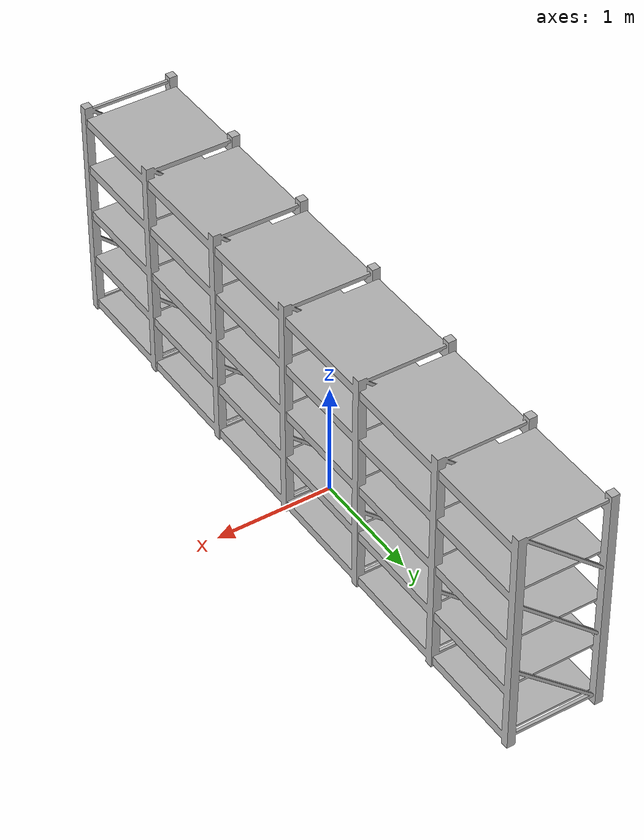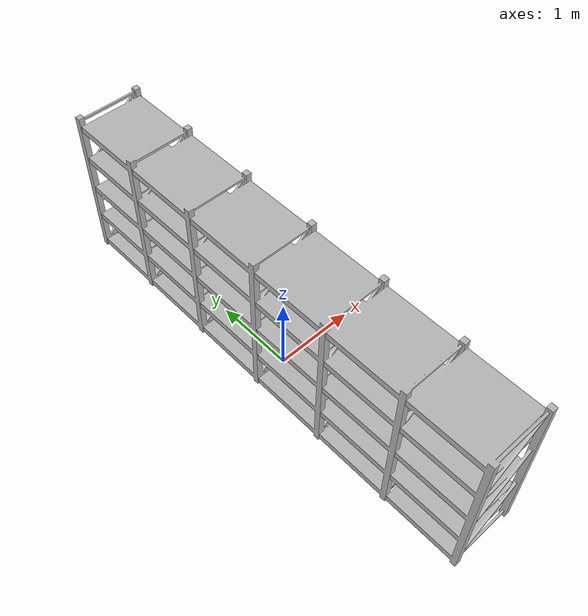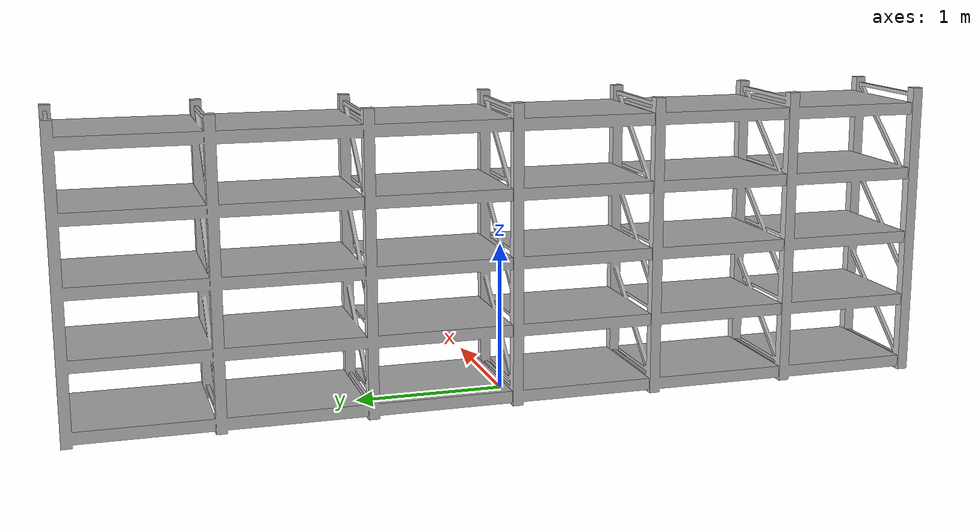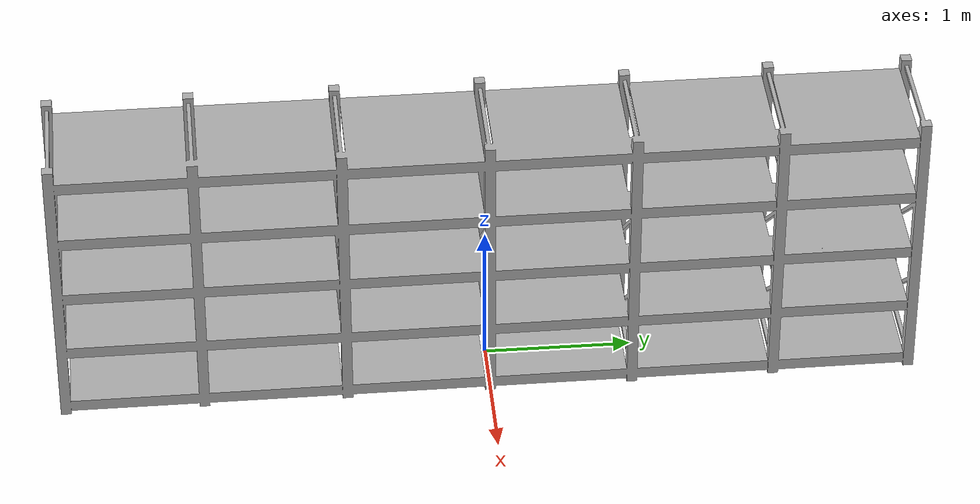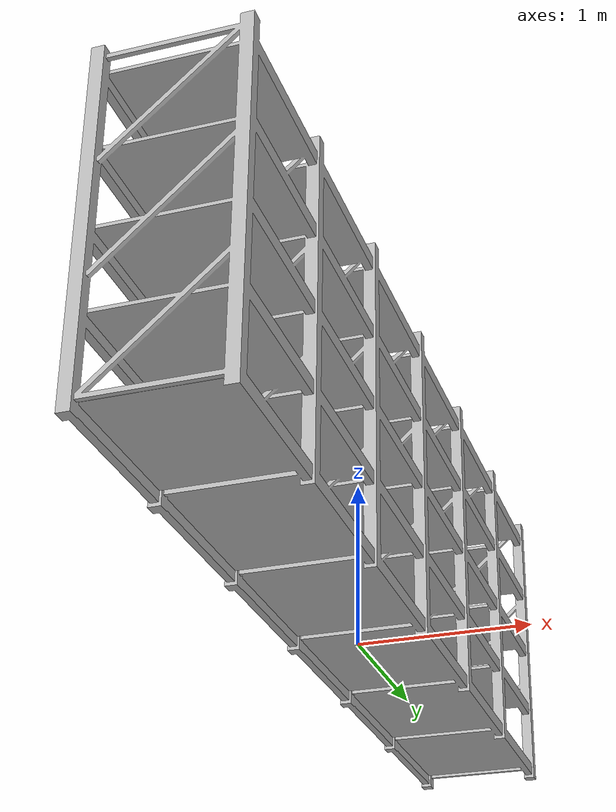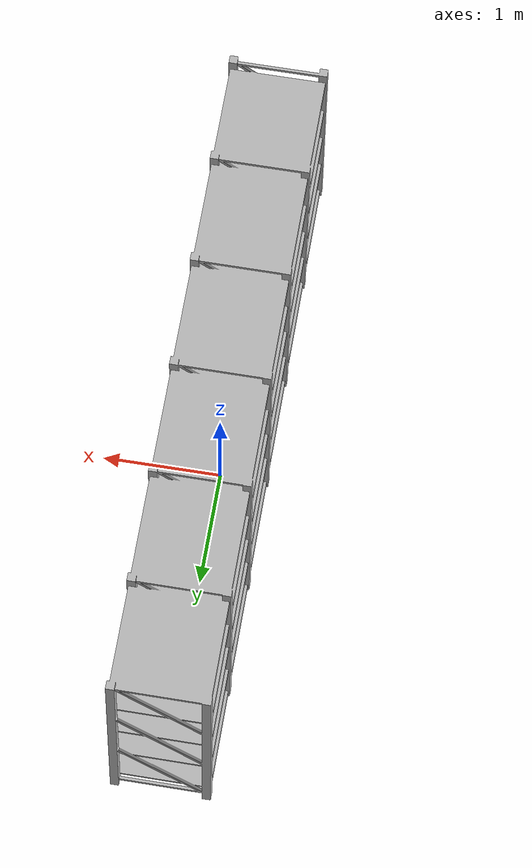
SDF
<?xml version="1.0"?>
<sdf version="1.6">
  <model name="warehouse_rack_5lvl_6bay">
    <static>true</static>
    <link name="link">
      <collision name="shelf_0">
        <pose>0 0 0.09 0 0 0</pose>
        <geometry><box><size>0.83 5.8 0.02</size></box></geometry>
      </collision>
      <collision name="shelf_1">
        <pose>0 0 0.54 0 0 0</pose>
        <geometry><box><size>0.83 5.8 0.02</size></box></geometry>
      </collision>
      <collision name="shelf_2">
        <pose>0 0 0.99 0 0 0</pose>
        <geometry><box><size>0.83 5.8 0.02</size></box></geometry>
      </collision>
      <collision name="shelf_3">
        <pose>0 0 1.44 0 0 0</pose>
        <geometry><box><size>0.83 5.8 0.02</size></box></geometry>
      </collision>
      <collision name="shelf_4">
        <pose>0 0 1.89 0 0 0</pose>
        <geometry><box><size>0.83 5.8 0.02</size></box></geometry>
      </collision>
      <collision name="post_0_0">
        <pose>-0.38 -2.865 1 0 0 0</pose>
        <geometry><box><size>0.07 0.07 2</size></box></geometry>
      </collision>
      <collision name="post_0_1">
        <pose>0.38 -2.865 1 0 0 0</pose>
        <geometry><box><size>0.07 0.07 2</size></box></geometry>
      </collision>
      <collision name="post_1_0">
        <pose>-0.38 -1.9333 1 0 0 0</pose>
        <geometry><box><size>0.07 0.07 2</size></box></geometry>
      </collision>
      <collision name="post_1_1">
        <pose>0.38 -1.9333 1 0 0 0</pose>
        <geometry><box><size>0.07 0.07 2</size></box></geometry>
      </collision>
      <collision name="post_2_0">
        <pose>-0.38 -0.96667 1 0 0 0</pose>
        <geometry><box><size>0.07 0.07 2</size></box></geometry>
      </collision>
      <collision name="post_2_1">
        <pose>0.38 -0.96667 1 0 0 0</pose>
        <geometry><box><size>0.07 0.07 2</size></box></geometry>
      </collision>
      <collision name="post_3_0">
        <pose>-0.38 0 1 0 0 0</pose>
        <geometry><box><size>0.07 0.07 2</size></box></geometry>
      </collision>
      <collision name="post_3_1">
        <pose>0.38 0 1 0 0 0</pose>
        <geometry><box><size>0.07 0.07 2</size></box></geometry>
      </collision>
      <collision name="post_4_0">
        <pose>-0.38 0.96667 1 0 0 0</pose>
        <geometry><box><size>0.07 0.07 2</size></box></geometry>
      </collision>
      <collision name="post_4_1">
        <pose>0.38 0.96667 1 0 0 0</pose>
        <geometry><box><size>0.07 0.07 2</size></box></geometry>
      </collision>
      <collision name="post_5_0">
        <pose>-0.38 1.9333 1 0 0 0</pose>
        <geometry><box><size>0.07 0.07 2</size></box></geometry>
      </collision>
      <collision name="post_5_1">
        <pose>0.38 1.9333 1 0 0 0</pose>
        <geometry><box><size>0.07 0.07 2</size></box></geometry>
      </collision>
      <collision name="post_6_0">
        <pose>-0.38 2.865 1 0 0 0</pose>
        <geometry><box><size>0.07 0.07 2</size></box></geometry>
      </collision>
      <collision name="post_6_1">
        <pose>0.38 2.865 1 0 0 0</pose>
        <geometry><box><size>0.07 0.07 2</size></box></geometry>
      </collision>
      <visual name="visual">
        <cast_shadows>false</cast_shadows>
        <geometry><mesh><uri>model://warehouse_rack_5lvl_6bay/meshes/mesh.dae</uri></mesh></geometry>
      </visual>
    </link>
  </model>
</sdf>
